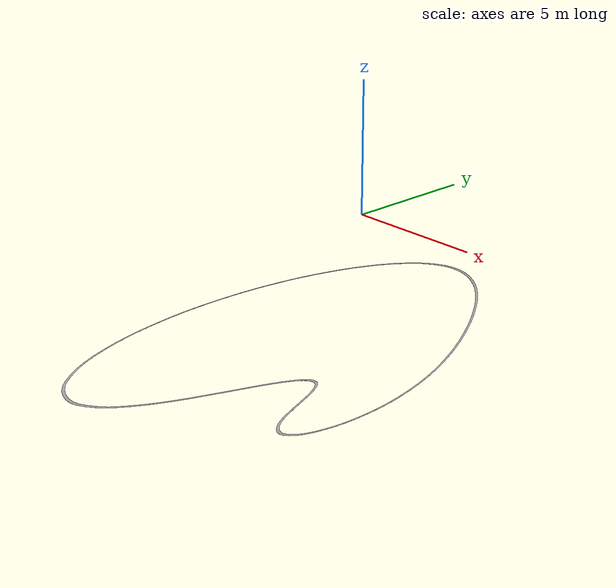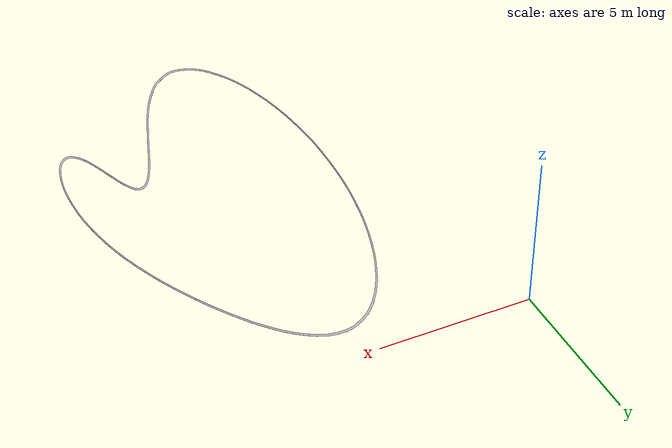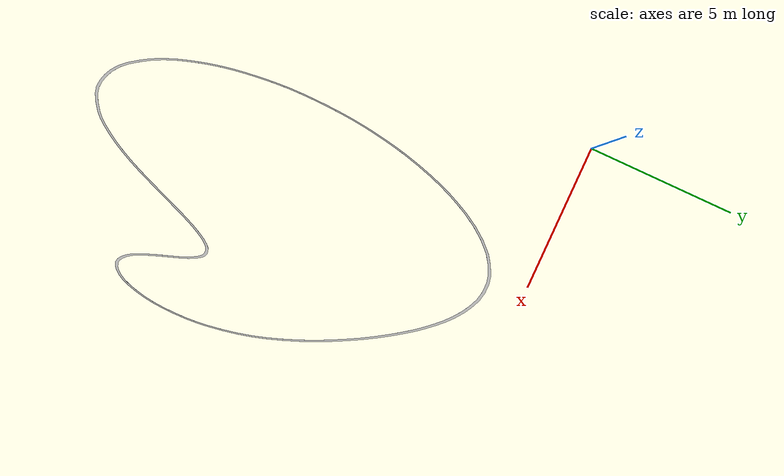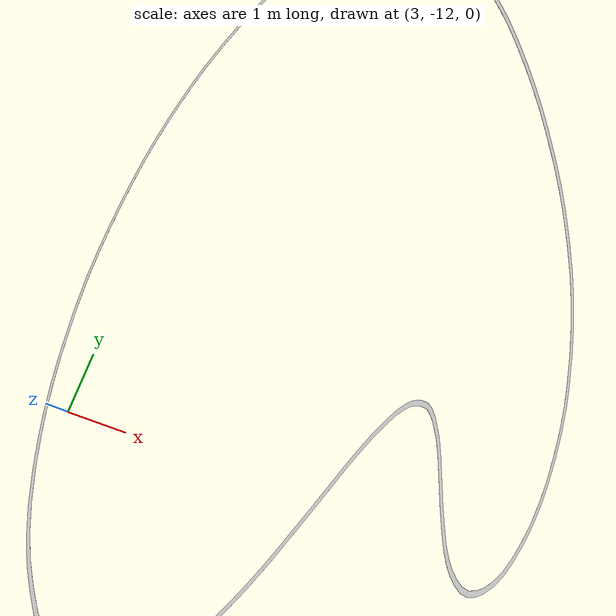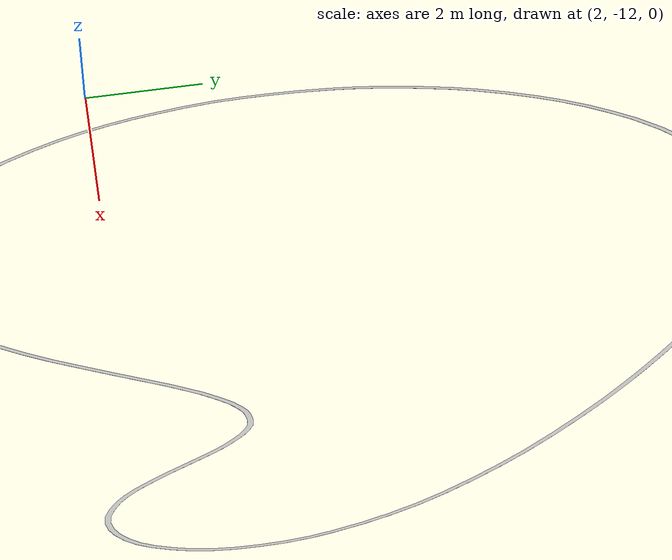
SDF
<sdf version='1.7'>
  <world name='default'>
    <light name='sun1' type='directional'>
      <cast_shadows>1</cast_shadows>
      <pose>0 0 10 0 -0 0</pose>
      <diffuse>0.8 0.8 0.8 1</diffuse>
      <specular>0.2 0.2 0.2 1</specular>
      <attenuation>
        <range>1000</range>
        <constant>0.9</constant>
        <linear>0.01</linear>
        <quadratic>0.001</quadratic>
      </attenuation>
      <direction>-0.5 0.1 -0.9</direction>
      <spot>
        <inner_angle>0</inner_angle>
        <outer_angle>0</outer_angle>
        <falloff>0</falloff>
      </spot>
    </light>
    <model name='ground_plane'>
      <static>1</static>
      <link name='link'>
        <collision name='collision'>
          <geometry>
            <plane>
              <normal>0 0 1</normal>
              <size>100 100</size>
            </plane>
          </geometry>
          <surface>
            <friction>
              <ode>
                <mu>100</mu>
                <mu2>50</mu2>
              </ode>
              <torsional>
                <ode/>
              </torsional>
            </friction>
            <contact>
              <ode/>
            </contact>
            <bounce/>
            <friction>
              <ode>
                <mu>1.0</mu>
                <mu2>1.0</mu2>
              </ode>
            </friction>
            <bounce>
              <restitution_coefficient>0.0</restitution_coefficient>
              <threshold>1.0</threshold>
            </bounce>
          </surface>
          <max_contacts>10</max_contacts>
        </collision>
        <visual name='visual'>
          <cast_shadows>0</cast_shadows>
          <geometry>
            <plane>
              <normal>0 0 1</normal>
              <size>100 100</size>
            </plane>
          </geometry>
          <material>
            <script>
              <uri>file://media/materials/scripts/gazebo.material</uri>
              <name>Gazebo/Grey</name>
            </script>
          </material>
        </visual>
        <self_collide>0</self_collide>
        <enable_wind>0</enable_wind>
        <kinematic>0</kinematic>
      </link>
    </model>
    <gravity>0 0 -9.8</gravity>
    <magnetic_field>6e-06 2.3e-05 -4.2e-05</magnetic_field>
    <atmosphere type='adiabatic'/>
    <physics type='ode'>
      <max_step_size>0.001</max_step_size>
      <real_time_factor>1</real_time_factor>
      <real_time_update_rate>1000</real_time_update_rate>
    </physics>
    <scene>
      <ambient>0.4 0.4 0.4 1</ambient>
      <background>0.7 0.7 0.7 1</background>
      <shadows>1</shadows>
    </scene>
    <wind/>
    <spherical_coordinates>
      <surface_model>EARTH_WGS84</surface_model>
      <latitude_deg>0</latitude_deg>
      <longitude_deg>0</longitude_deg>
      <elevation>0</elevation>
      <heading_deg>0</heading_deg>
    </spherical_coordinates>
    <model name='Road'>
      <static>1</static>
      <link name='link'>
        <collision name='collision'>
          <pose>0 0 -0.1 0 -0 0</pose>
          <geometry>
            <mesh>
              <uri>model://road/meshes/road.dae</uri>
              <scale>0.2 0.5 0.15</scale>
            </mesh>
          </geometry>
          <max_contacts>10</max_contacts>
          <surface>
            <contact>
              <ode/>
            </contact>
            <bounce/>
            <friction>
              <torsional>
                <ode/>
              </torsional>
              <ode/>
            </friction>
          </surface>
        </collision>
        <visual name='visual'>
          <pose>0 0 -0.1 0 -0 0</pose>
          <geometry>
            <mesh>
              <uri>model://road/meshes/road.dae</uri>
              <scale>0.2 0.5 0.15</scale>
            </mesh>
          </geometry>
          <material>
            <script>
              <uri>model://road/materials/scripts</uri>
              <uri>model://road/materials/textures</uri>
              <name>Road/Diffuse</name>
            </script>
          </material>
        </visual>
        <self_collide>0</self_collide>
        <enable_wind>0</enable_wind>
        <kinematic>0</kinematic>
      </link>
      <pose>5.6515 -8.27872 0 0 -0 0</pose>
    </model>
    ...
  </world>
</sdf>
